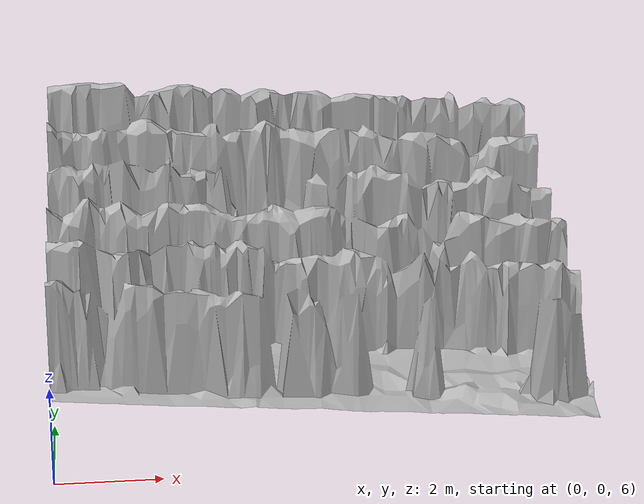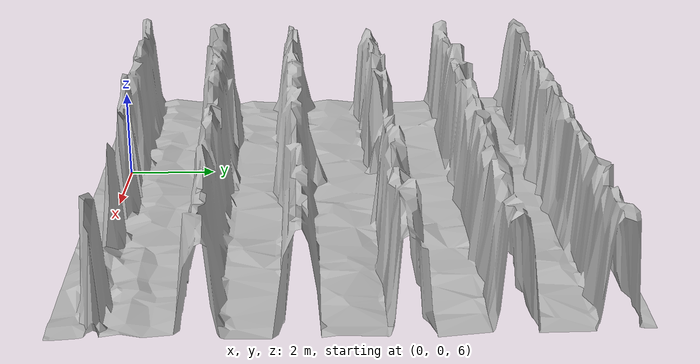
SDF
<?xml version="1.0" ?>
<sdf version="1.10">
    <model name="map_160_70">
        <link name="map_160_70_link">
            <visual name="map_160_70_visual">
                <geometry>
                    <mesh>
                        <uri>meshes/visual/map_160_70.obj</uri>
                    </mesh>
                </geometry>
            </visual>
            <collision name="map_160_70_collision">
                <surface>
                    <friction>
                        <ode>
                            <mu>2.316343837943928</mu>
                            <mu2>2.316343837943928</mu2>
                        </ode>
                        <bullet>
                            <friction>2.316343837943928</friction>
                            <friction2>2.316343837943928</friction2>
                        </bullet>
                    </friction>
                </surface>
                <geometry>
                    <mesh>
                        <uri>meshes/visual/map_160_70.obj</uri>
                    </mesh>
                </geometry>
            </collision>
        </link>
        <static>True</static>
    </model>
</sdf>
